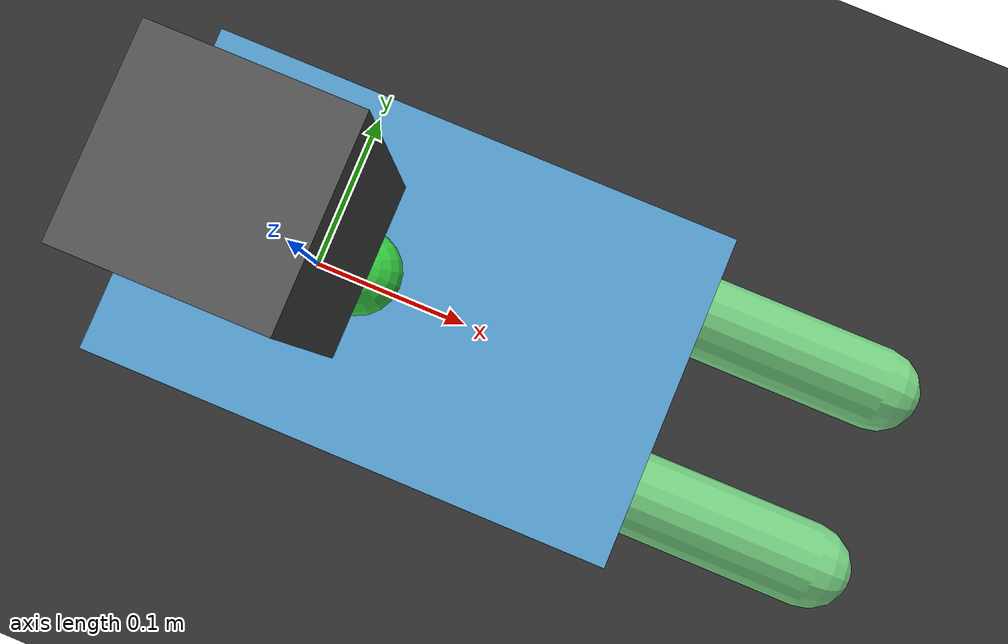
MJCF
<mujoco model="open_meriforma_virtual_foot">
  <compiler angle="degree" autolimits="true"/>
  <option timestep="0.002" gravity="0 0 -9.81"/>
  <default>
    <joint damping="0.25" armature="0.01"/>
    <geom density="450" friction="0.9 0.1 0.01"/>
  </default>
  <worldbody>
    <light pos="0 0 2" dir="0 0 -1"/>
    <geom name="floor" type="plane" size="2 2 0.1" rgba="0.2 0.2 0.2 1"/>
    <body name="mount" pos="0 0 0.190">
      <geom type="box" size="0.05 0.05 0.08" rgba="0.35 0.35 0.35 1"/>
      <body name="ankle_pitch_body" pos="0 0 -0.08">
        <joint name="ankle_pitch" type="hinge" axis="0 1 0" range="-30 30"/>
        <!-- Minimal physical mass for the moving intermediate gimbal body. -->
        <geom name="ankle_pitch_hub" type="cylinder" size="0.04 0.025"
              euler="90 0 0" density="450" contype="0" conaffinity="0"
              rgba="0.55 0.55 0.55 1"/>
        <body name="ankle_roll_body">
          <joint name="ankle_roll" type="hinge" axis="1 0 0" range="-20 20"/>
          <geom name="sole" type="box" pos="0.07 0 -0.06" size="0.16 0.10 0.025"
                contype="1" conaffinity="1" rgba="0.35 0.65 0.85 1"/>
          <site name="indicator_light" pos="0.04 0 -0.025" type="sphere" size="0.025" rgba="0.2 0.8 0.25 1"/>
          <site name="sole_contact_site" pos="0.07 0 -0.085" type="box" size="0.16 0.10 0.025" rgba="1 0.2 0.2 0.15"/>
          <body name="toe_left_body" pos="0.23 0.055 -0.06">
            <joint name="toe_left" type="hinge" axis="0 1 0" range="-10 55"/>
            <geom type="capsule" fromto="0 0 0 0.11 0 0" size="0.025"
                  contype="1" conaffinity="1" rgba="0.45 0.8 0.5 1"/>
          </body>
          <body name="toe_right_body" pos="0.23 -0.055 -0.06">
            <joint name="toe_right" type="hinge" axis="0 1 0" range="-10 55"/>
            <geom type="capsule" fromto="0 0 0 0.11 0 0" size="0.025"
                  contype="1" conaffinity="1" rgba="0.45 0.8 0.5 1"/>
          </body>
        </body>
      </body>
    </body>
  </worldbody>
  <actuator>
    <position name="actuator_ankle_pitch" joint="ankle_pitch" kp="35" ctrlrange="-0.523599 0.523599"/>
    <position name="actuator_ankle_roll" joint="ankle_roll" kp="35" ctrlrange="-0.349066 0.349066"/>
    <position name="actuator_toe_left" joint="toe_left" kp="18" ctrlrange="-0.174533 0.959931"/>
    <position name="actuator_toe_right" joint="toe_right" kp="18" ctrlrange="-0.174533 0.959931"/>
  </actuator>
  <sensor>
    <touch name="sole_contact" site="sole_contact_site"/>
  </sensor>
</mujoco>
